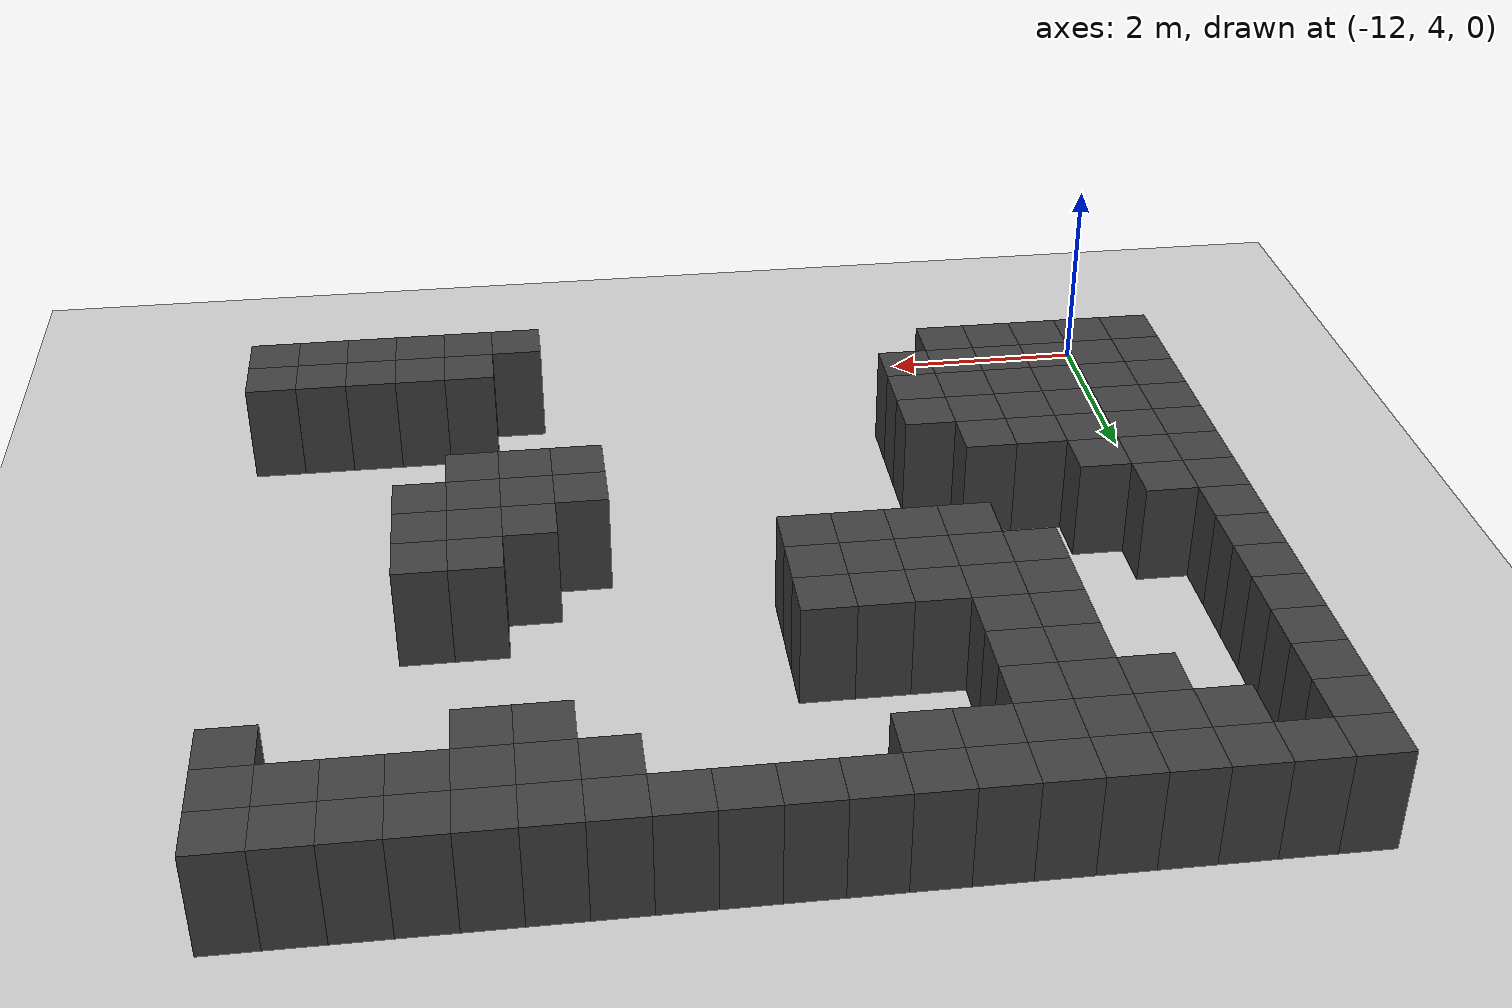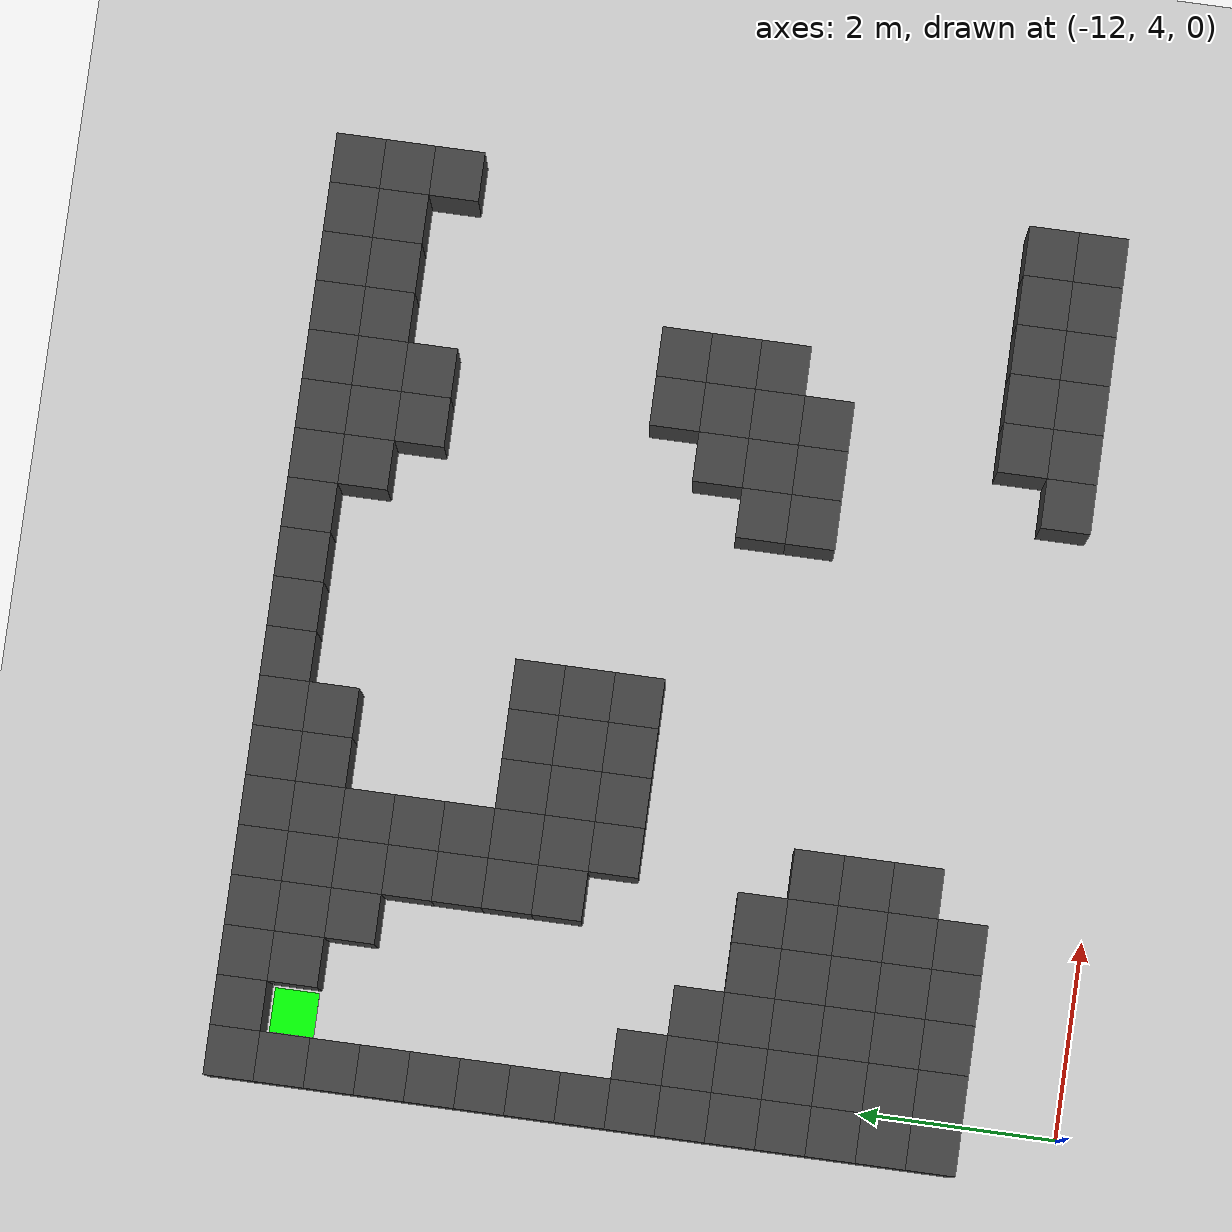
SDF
<sdf version="1.7">
 <world name="map_7372">
  <model name="ground_plane">
   <static>true</static>
   <link name="link">
    <collision name="collision">
     <geometry><plane><normal>0 0 1</normal><size>200 200</size></plane></geometry>
    </collision>
    <visual name="visual">
     <geometry><plane><normal>0 0 1</normal><size>200 200</size></plane></geometry>
     <material><ambient>0.8 0.8 0.8 1</ambient><diffuse>0.8 0.8 0.8 1</diffuse></material>
    </visual>
   </link>
  </model>
  <model name="maze_environment">
   <static>true</static>
   <link name="wall_0">
    <pose>-12.250 12.250 0.500 0 0 0</pose>
    <collision name="col"><geometry><box><size>0.5 0.5 1.0</size></box></geometry></collision>
    <visual name="vis">
     <geometry><box><size>0.5 0.5 1.0</size></box></geometry>
     <material><ambient>0.15 0.15 0.15 1</ambient><diffuse>0.25 0.25 0.25 1</diffuse></material>
    </visual>
   </link>
   <link name="wall_1">
    <pose>-11.750 12.250 0.500 0 0 0</pose>
    <collision name="col"><geometry><box><size>0.5 0.5 1.0</size></box></geometry></collision>
    <visual name="vis">
     <geometry><box><size>0.5 0.5 1.0</size></box></geometry>
     <material><ambient>0.15 0.15 0.15 1</ambient><diffuse>0.25 0.25 0.25 1</diffuse></material>
    </visual>
   </link>
   <link name="wall_2">
    <pose>-11.250 12.250 0.500 0 0 0</pose>
    <collision name="col"><geometry><box><size>0.5 0.5 1.0</size></box></geometry></collision>
    <visual name="vis">
     <geometry><box><size>0.5 0.5 1.0</size></box></geometry>
     <material><ambient>0.15 0.15 0.15 1</ambient><diffuse>0.25 0.25 0.25 1</diffuse></material>
    </visual>
   </link>
   <link name="wall_3">
    <pose>-10.750 12.250 0.500 0 0 0</pose>
    <collision name="col"><geometry><box><size>0.5 0.5 1.0</size></box></geometry></collision>
    <visual name="vis">
     <geometry><box><size>0.5 0.5 1.0</size></box></geometry>
     <material><ambient>0.15 0.15 0.15 1</ambient><diffuse>0.25 0.25 0.25 1</diffuse></material>
    </visual>
   </link>
   <link name="wall_4">
    <pose>-10.250 12.250 0.500 0 0 0</pose>
    <collision name="col"><geometry><box><size>0.5 0.5 1.0</size></box></geometry></collision>
    <visual name="vis">
     <geometry><box><size>0.5 0.5 1.0</size></box></geometry>
     <material><ambient>0.15 0.15 0.15 1</ambient><diffuse>0.25 0.25 0.25 1</diffuse></material>
    </visual>
   </link>
   <link name="wall_5">
    <pose>-9.750 12.250 0.500 0 0 0</pose>
    <collision name="col"><geometry><box><size>0.5 0.5 1.0</size></box></geometry></collision>
    <visual name="vis">
     <geometry><box><size>0.5 0.5 1.0</size></box></geometry>
     <material><ambient>0.15 0.15 0.15 1</ambient><diffuse>0.25 0.25 0.25 1</diffuse></material>
    </visual>
   </link>
   <link name="wall_6">
    <pose>-9.250 12.250 0.500 0 0 0</pose>
    <collision name="col"><geometry><box><size>0.5 0.5 1.0</size></box></geometry></collision>
    <visual name="vis">
     <geometry><box><size>0.5 0.5 1.0</size></box></geometry>
     <material><ambient>0.15 0.15 0.15 1</ambient><diffuse>0.25 0.25 0.25 1</diffuse></material>
    </visual>
   </link>
   <link name="wall_7">
    <pose>-8.750 12.250 0.500 0 0 0</pose>
    <collision name="col"><geometry><box><size>0.5 0.5 1.0</size></box></geometry></collision>
    <visual name="vis">
     <geometry><box><size>0.5 0.5 1.0</size></box></geometry>
     <material><ambient>0.15 0.15 0.15 1</ambient><diffuse>0.25 0.25 0.25 1</diffuse></material>
    </visual>
   </link>
   <link name="wall_8">
    <pose>-8.250 12.250 0.500 0 0 0</pose>
    <collision name="col"><geometry><box><size>0.5 0.5 1.0</size></box></geometry></collision>
    <visual name="vis">
     <geometry><box><size>0.5 0.5 1.0</size></box></geometry>
     <material><ambient>0.15 0.15 0.15 1</ambient><diffuse>0.25 0.25 0.25 1</diffuse></material>
    </visual>
   </link>
   <link name="wall_9">
    <pose>-7.750 12.250 0.500 0 0 0</pose>
    <collision name="col"><geometry><box><size>0.5 0.5 1.0</size></box></geometry></collision>
    <visual name="vis">
     <geometry><box><size>0.5 0.5 1.0</size></box></geometry>
     <material><ambient>0.15 0.15 0.15 1</ambient><diffuse>0.25 0.25 0.25 1</diffuse></material>
    </visual>
   </link>
   <link name="wall_10">
    <pose>-7.250 12.250 0.500 0 0 0</pose>
    <collision name="col"><geometry><box><size>0.5 0.5 1.0</size></box></geometry></collision>
    <visual name="vis">
     <geometry><box><size>0.5 0.5 1.0</size></box></geometry>
     <material><ambient>0.15 0.15 0.15 1</ambient><diffuse>0.25 0.25 0.25 1</diffuse></material>
    </visual>
   </link>
   <link name="wall_11">
    <pose>-6.750 12.250 0.500 0 0 0</pose>
    <collision name="col"><geometry><box><size>0.5 0.5 1.0</size></box></geometry></collision>
    <visual name="vis">
     <geometry><box><size>0.5 0.5 1.0</size></box></geometry>
     <material><ambient>0.15 0.15 0.15 1</ambient><diffuse>0.25 0.25 0.25 1</diffuse></material>
    </visual>
   </link>
   <link name="wall_12">
    <pose>-6.250 12.250 0.500 0 0 0</pose>
    <collision name="col"><geometry><box><size>0.5 0.5 1.0</size></box></geometry></collision>
    <visual name="vis">
     <geometry><box><size>0.5 0.5 1.0</size></box></geometry>
     <material><ambient>0.15 0.15 0.15 1</ambient><diffuse>0.25 0.25 0.25 1</diffuse></material>
    </visual>
   </link>
   <link name="wall_13">
    <pose>-5.750 12.250 0.500 0 0 0</pose>
    <collision name="col"><geometry><box><size>0.5 0.5 1.0</size></box></geometry></collision>
    <visual name="vis">
     <geometry><box><size>0.5 0.5 1.0</size></box></geometry>
     <material><ambient>0.15 0.15 0.15 1</ambient><diffuse>0.25 0.25 0.25 1</diffuse></material>
    </visual>
   </link>
   <link name="wall_14">
    <pose>-5.250 12.250 0.500 0 0 0</pose>
    <collision name="col"><geometry><box><size>0.5 0.5 1.0</size></box></geometry></collision>
    <visual name="vis">
     <geometry><box><size>0.5 0.5 1.0</size></box></geometry>
     <material><ambient>0.15 0.15 0.15 1</ambient><diffuse>0.25 0.25 0.25 1</diffuse></material>
    </visual>
   </link>
   <link name="wall_15">
    <pose>-4.750 12.250 0.500 0 0 0</pose>
    <collision name="col"><geometry><box><size>0.5 0.5 1.0</size></box></geometry></collision>
    <visual name="vis">
     <geometry><box><size>0.5 0.5 1.0</size></box></geometry>
     <material><ambient>0.15 0.15 0.15 1</ambient><diffuse>0.25 0.25 0.25 1</diffuse></material>
    </visual>
   </link>
   <link name="wall_16">
    <pose>-4.250 12.250 0.500 0 0 0</pose>
    <collision name="col"><geometry><box><size>0.5 0.5 1.0</size></box></geometry></collision>
    <visual name="vis">
     <geometry><box><size>0.5 0.5 1.0</size></box></geometry>
     <material><ambient>0.15 0.15 0.15 1</ambient><diffuse>0.25 0.25 0.25 1</diffuse></material>
    </visual>
   </link>
   <link name="wall_17">
    <pose>-3.750 12.250 0.500 0 0 0</pose>
    <collision name="col"><geometry><box><size>0.5 0.5 1.0</size></box></geometry></collision>
    <visual name="vis">
     <geometry><box><size>0.5 0.5 1.0</size></box></geometry>
     <material><ambient>0.15 0.15 0.15 1</ambient><diffuse>0.25 0.25 0.25 1</diffuse></material>
    </visual>
   </link>
   <link name="wall_18">
    <pose>-3.250 12.250 0.500 0 0 0</pose>
    <collision name="col"><geometry><box><size>0.5 0.5 1.0</size></box></geometry></collision>
    <visual name="vis">
     <geometry><box><size>0.5 0.5 1.0</size></box></geometry>
     <material><ambient>0.15 0.15 0.15 1</ambient><diffuse>0.25 0.25 0.25 1</diffuse></material>
    </visual>
   </link>
   <link name="wall_50">
    <pose>-12.250 11.750 0.500 0 0 0</pose>
    <collision name="col"><geometry><box><size>0.5 0.5 1.0</size></box></geometry></collision>
    <visual name="vis">
     <geometry><box><size>0.5 0.5 1.0</size></box></geometry>
     <material><ambient>0.15 0.15 0.15 1</ambient><diffuse>0.25 0.25 0.25 1</diffuse></material>
    </visual>
   </link>
   <link name="wall_51">
    <pose>-11.250 11.750 0.500 0 0 0</pose>
    <collision name="col"><geometry><box><size>0.5 0.5 1.0</size></box></geometry></collision>
    <visual name="vis">
     <geometry><box><size>0.5 0.5 1.0</size></box></geometry>
     <material><ambient>0.15 0.15 0.15 1</ambient><diffuse>0.25 0.25 0.25 1</diffuse></material>
    </visual>
   </link>
   <link name="wall_52">
    <pose>-10.750 11.750 0.500 0 0 0</pose>
    <collision name="col"><geometry><box><size>0.5 0.5 1.0</size></box></geometry></collision>
    <visual name="vis">
     <geometry><box><size>0.5 0.5 1.0</size></box></geometry>
     <material><ambient>0.15 0.15 0.15 1</ambient><diffuse>0.25 0.25 0.25 1</diffuse></material>
    </visual>
   </link>
   <link name="wall_53">
    <pose>-10.250 11.750 0.500 0 0 0</pose>
    <collision name="col"><geometry><box><size>0.5 0.5 1.0</size></box></geometry></collision>
    <visual name="vis">
     <geometry><box><size>0.5 0.5 1.0</size></box></geometry>
     <material><ambient>0.15 0.15 0.15 1</ambient><diffuse>0.25 0.25 0.25 1</diffuse></material>
    </visual>
   </link>
   <link name="wall_54">
    <pose>-9.750 11.750 0.500 0 0 0</pose>
    <collision name="col"><geometry><box><size>0.5 0.5 1.0</size></box></geometry></collision>
    <visual name="vis">
     <geometry><box><size>0.5 0.5 1.0</size></box></geometry>
     <material><ambient>0.15 0.15 0.15 1</ambient><diffuse>0.25 0.25 0.25 1</diffuse></material>
    </visual>
   </link>
   <link name="wall_55">
    <pose>-9.250 11.750 0.500 0 0 0</pose>
    <collision name="col"><geometry><box><size>0.5 0.5 1.0</size></box></geometry></collision>
    <visual name="vis">
     <geometry><box><size>0.5 0.5 1.0</size></box></geometry>
     <material><ambient>0.15 0.15 0.15 1</ambient><diffuse>0.25 0.25 0.25 1</diffuse></material>
    </visual>
   </link>
   <link name="wall_56">
    <pose>-8.750 11.750 0.500 0 0 0</pose>
    <collision name="col"><geometry><box><size>0.5 0.5 1.0</size></box></geometry></collision>
    <visual name="vis">
     <geometry><box><size>0.5 0.5 1.0</size></box></geometry>
     <material><ambient>0.15 0.15 0.15 1</ambient><diffuse>0.25 0.25 0.25 1</diffuse></material>
    </visual>
   </link>
   <link name="wall_57">
    <pose>-6.250 11.750 0.500 0 0 0</pose>
    <collision name="col"><geometry><box><size>0.5 0.5 1.0</size></box></geometry></collision>
    <visual name="vis">
     <geometry><box><size>0.5 0.5 1.0</size></box></geometry>
     <material><ambient>0.15 0.15 0.15 1</ambient><diffuse>0.25 0.25 0.25 1</diffuse></material>
    </visual>
   </link>
   <link name="wall_58">
    <pose>-5.750 11.750 0.500 0 0 0</pose>
    <collision name="col"><geometry><box><size>0.5 0.5 1.0</size></box></geometry></collision>
    <visual name="vis">
     <geometry><box><size>0.5 0.5 1.0</size></box></geometry>
     <material><ambient>0.15 0.15 0.15 1</ambient><diffuse>0.25 0.25 0.25 1</diffuse></material>
    </visual>
   </link>
   <link name="wall_59">
    <pose>-5.250 11.750 0.500 0 0 0</pose>
    <collision name="col"><geometry><box><size>0.5 0.5 1.0</size></box></geometry></collision>
    <visual name="vis">
     <geometry><box><size>0.5 0.5 1.0</size></box></geometry>
     <material><ambient>0.15 0.15 0.15 1</ambient><diffuse>0.25 0.25 0.25 1</diffuse></material>
    </visual>
   </link>
   <link name="wall_60">
    <pose>-4.750 11.750 0.500 0 0 0</pose>
    <collision name="col"><geometry><box><size>0.5 0.5 1.0</size></box></geometry></collision>
    <visual name="vis">
     <geometry><box><size>0.5 0.5 1.0</size></box></geometry>
     <material><ambient>0.15 0.15 0.15 1</ambient><diffuse>0.25 0.25 0.25 1</diffuse></material>
    </visual>
   </link>
   <link name="wall_61">
    <pose>-4.250 11.750 0.500 0 0 0</pose>
    <collision name="col"><geometry><box><size>0.5 0.5 1.0</size></box></geometry></collision>
    <visual name="vis">
     <geometry><box><size>0.5 0.5 1.0</size></box></geometry>
     <material><ambient>0.15 0.15 0.15 1</ambient><diffuse>0.25 0.25 0.25 1</diffuse></material>
    </visual>
   </link>
   <link name="wall_62">
    <pose>-3.750 11.750 0.500 0 0 0</pose>
    <collision name="col"><geometry><box><size>0.5 0.5 1.0</size></box></geometry></collision>
    <visual name="vis">
     <geometry><box><size>0.5 0.5 1.0</size></box></geometry>
     <material><ambient>0.15 0.15 0.15 1</ambient><diffuse>0.25 0.25 0.25 1</diffuse></material>
    </visual>
   </link>
   <link name="wall_63">
    <pose>-3.250 11.750 0.500 0 0 0</pose>
    <collision name="col"><geometry><box><size>0.5 0.5 1.0</size></box></geometry></collision>
    <visual name="vis">
     <geometry><box><size>0.5 0.5 1.0</size></box></geometry>
     <material><ambient>0.15 0.15 0.15 1</ambient><diffuse>0.25 0.25 0.25 1</diffuse></material>
    </visual>
   </link>
   <link name="wall_81">
    <pose>-12.250 11.250 0.500 0 0 0</pose>
    <collision name="col"><geometry><box><size>0.5 0.5 1.0</size></box></geometry></collision>
    <visual name="vis">
     <geometry><box><size>0.5 0.5 1.0</size></box></geometry>
     <material><ambient>0.15 0.15 0.15 1</ambient><diffuse>0.25 0.25 0.25 1</diffuse></material>
    </visual>
   </link>
   <link name="wall_82">
    <pose>-10.750 11.250 0.500 0 0 0</pose>
    <collision name="col"><geometry><box><size>0.5 0.5 1.0</size></box></geometry></collision>
    <visual name="vis">
     <geometry><box><size>0.5 0.5 1.0</size></box></geometry>
     <material><ambient>0.15 0.15 0.15 1</ambient><diffuse>0.25 0.25 0.25 1</diffuse></material>
    </visual>
   </link>
   <link name="wall_83">
    <pose>-10.250 11.250 0.500 0 0 0</pose>
    <collision name="col"><geometry><box><size>0.5 0.5 1.0</size></box></geometry></collision>
    <visual name="vis">
     <geometry><box><size>0.5 0.5 1.0</size></box></geometry>
     <material><ambient>0.15 0.15 0.15 1</ambient><diffuse>0.25 0.25 0.25 1</diffuse></material>
    </visual>
   </link>
   <link name="wall_84">
    <pose>-9.750 11.250 0.500 0 0 0</pose>
    <collision name="col"><geometry><box><size>0.5 0.5 1.0</size></box></geometry></collision>
    <visual name="vis">
     <geometry><box><size>0.5 0.5 1.0</size></box></geometry>
     <material><ambient>0.15 0.15 0.15 1</ambient><diffuse>0.25 0.25 0.25 1</diffuse></material>
    </visual>
   </link>
   <link name="wall_85">
    <pose>-5.750 11.250 0.500 0 0 0</pose>
    <collision name="col"><geometry><box><size>0.5 0.5 1.0</size></box></geometry></collision>
    <visual name="vis">
     <geometry><box><size>0.5 0.5 1.0</size></box></geometry>
     <material><ambient>0.15 0.15 0.15 1</ambient><diffuse>0.25 0.25 0.25 1</diffuse></material>
    </visual>
   </link>
   <link name="wall_86">
    <pose>-5.250 11.250 0.500 0 0 0</pose>
    <collision name="col"><geometry><box><size>0.5 0.5 1.0</size></box></geometry></collision>
    <visual name="vis">
     <geometry><box><size>0.5 0.5 1.0</size></box></geometry>
     <material><ambient>0.15 0.15 0.15 1</ambient><diffuse>0.25 0.25 0.25 1</diffuse></material>
    </visual>
   </link>
   <link name="wall_87">
    <pose>-3.250 11.250 0.500 0 0 0</pose>
    <collision name="col"><geometry><box><size>0.5 0.5 1.0</size></box></geometry></collision>
    <visual name="vis">
     <geometry><box><size>0.5 0.5 1.0</size></box></geometry>
     <material><ambient>0.15 0.15 0.15 1</ambient><diffuse>0.25 0.25 0.25 1</diffuse></material>
    </visual>
   </link>
   <link name="wall_101">
    <pose>-12.250 10.750 0.500 0 0 0</pose>
    <collision name="col"><geometry><box><size>0.5 0.5 1.0</size></box></geometry></collision>
    <visual name="vis">
     <geometry><box><size>0.5 0.5 1.0</size></box></geometry>
     <material><ambient>0.15 0.15 0.15 1</ambient><diffuse>0.25 0.25 0.25 1</diffuse></material>
    </visual>
   </link>
   <link name="wall_102">
    <pose>-10.250 10.750 0.500 0 0 0</pose>
    <collision name="col"><geometry><box><size>0.5 0.5 1.0</size></box></geometry></collision>
    <visual name="vis">
     <geometry><box><size>0.5 0.5 1.0</size></box></geometry>
     <material><ambient>0.15 0.15 0.15 1</ambient><diffuse>0.25 0.25 0.25 1</diffuse></material>
    </visual>
   </link>
   <link name="wall_103">
    <pose>-9.750 10.750 0.500 0 0 0</pose>
    <collision name="col"><geometry><box><size>0.5 0.5 1.0</size></box></geometry></collision>
    <visual name="vis">
     <geometry><box><size>0.5 0.5 1.0</size></box></geometry>
     <material><ambient>0.15 0.15 0.15 1</ambient><diffuse>0.25 0.25 0.25 1</diffuse></material>
    </visual>
   </link>
   <link name="wall_113">
    <pose>-12.250 10.250 0.500 0 0 0</pose>
    <collision name="col"><geometry><box><size>0.5 0.5 1.0</size></box></geometry></collision>
    <visual name="vis">
     <geometry><box><size>0.5 0.5 1.0</size></box></geometry>
     <material><ambient>0.15 0.15 0.15 1</ambient><diffuse>0.25 0.25 0.25 1</diffuse></material>
    </visual>
   </link>
   <link name="wall_114">
    <pose>-10.250 10.250 0.500 0 0 0</pose>
    <collision name="col"><geometry><box><size>0.5 0.5 1.0</size></box></geometry></collision>
    <visual name="vis">
     <geometry><box><size>0.5 0.5 1.0</size></box></geometry>
     <material><ambient>0.15 0.15 0.15 1</ambient><diffuse>0.25 0.25 0.25 1</diffuse></material>
    </visual>
   </link>
   <link name="wall_115">
    <pose>-9.750 10.250 0.500 0 0 0</pose>
    <collision name="col"><geometry><box><size>0.5 0.5 1.0</size></box></geometry></collision>
    <visual name="vis">
     <geometry><box><size>0.5 0.5 1.0</size></box></geometry>
     <material><ambient>0.15 0.15 0.15 1</ambient><diffuse>0.25 0.25 0.25 1</diffuse></material>
    </visual>
   </link>
   <link name="wall_123">
    <pose>-12.250 9.750 0.500 0 0 0</pose>
    <collision name="col"><geometry><box><size>0.5 0.5 1.0</size></box></geometry></collision>
    <visual name="vis">
     <geometry><box><size>0.5 0.5 1.0</size></box></geometry>
     <material><ambient>0.15 0.15 0.15 1</ambient><diffuse>0.25 0.25 0.25 1</diffuse></material>
    </visual>
   </link>
   <link name="wall_124">
    <pose>-10.250 9.750 0.500 0 0 0</pose>
    <collision name="col"><geometry><box><size>0.5 0.5 1.0</size></box></geometry></collision>
    <visual name="vis">
     <geometry><box><size>0.5 0.5 1.0</size></box></geometry>
     <material><ambient>0.15 0.15 0.15 1</ambient><diffuse>0.25 0.25 0.25 1</diffuse></material>
    </visual>
   </link>
   <link name="wall_125">
    <pose>-9.750 9.750 0.500 0 0 0</pose>
    <collision name="col"><geometry><box><size>0.5 0.5 1.0</size></box></geometry></collision>
    <visual name="vis">
     <geometry><box><size>0.5 0.5 1.0</size></box></geometry>
     <material><ambient>0.15 0.15 0.15 1</ambient><diffuse>0.25 0.25 0.25 1</diffuse></material>
    </visual>
   </link>
   <link name="wall_126">
    <pose>-9.250 9.750 0.500 0 0 0</pose>
    <collision name="col"><geometry><box><size>0.5 0.5 1.0</size></box></geometry></collision>
    <visual name="vis">
     <geometry><box><size>0.5 0.5 1.0</size></box></geometry>
     <material><ambient>0.15 0.15 0.15 1</ambient><diffuse>0.25 0.25 0.25 1</diffuse></material>
    </visual>
   </link>
   <link name="wall_127">
    <pose>-8.750 9.750 0.500 0 0 0</pose>
    <collision name="col"><geometry><box><size>0.5 0.5 1.0</size></box></geometry></collision>
    <visual name="vis">
     <geometry><box><size>0.5 0.5 1.0</size></box></geometry>
     <material><ambient>0.15 0.15 0.15 1</ambient><diffuse>0.25 0.25 0.25 1</diffuse></material>
    </visual>
   </link>
   <link name="wall_128">
    <pose>-8.250 9.750 0.500 0 0 0</pose>
    <collision name="col"><geometry><box><size>0.5 0.5 1.0</size></box></geometry></collision>
    <visual name="vis">
     <geometry><box><size>0.5 0.5 1.0</size></box></geometry>
     <material><ambient>0.15 0.15 0.15 1</ambient><diffuse>0.25 0.25 0.25 1</diffuse></material>
    </visual>
   </link>
   <link name="wall_137">
    <pose>-12.250 9.250 0.500 0 0 0</pose>
    <collision name="col"><geometry><box><size>0.5 0.5 1.0</size></box></geometry></collision>
    <visual name="vis">
     <geometry><box><size>0.5 0.5 1.0</size></box></geometry>
     <material><ambient>0.15 0.15 0.15 1</ambient><diffuse>0.25 0.25 0.25 1</diffuse></material>
    </visual>
   </link>
   <link name="wall_138">
    <pose>-10.250 9.250 0.500 0 0 0</pose>
    <collision name="col"><geometry><box><size>0.5 0.5 1.0</size></box></geometry></collision>
    <visual name="vis">
     <geometry><box><size>0.5 0.5 1.0</size></box></geometry>
     <material><ambient>0.15 0.15 0.15 1</ambient><diffuse>0.25 0.25 0.25 1</diffuse></material>
    </visual>
   </link>
   <link name="wall_139">
    <pose>-9.750 9.250 0.500 0 0 0</pose>
    <collision name="col"><geometry><box><size>0.5 0.5 1.0</size></box></geometry></collision>
    <visual name="vis">
     <geometry><box><size>0.5 0.5 1.0</size></box></geometry>
     <material><ambient>0.15 0.15 0.15 1</ambient><diffuse>0.25 0.25 0.25 1</diffuse></material>
    </visual>
   </link>
   <link name="wall_140">
    <pose>-9.250 9.250 0.500 0 0 0</pose>
    <collision name="col"><geometry><box><size>0.5 0.5 1.0</size></box></geometry></collision>
    <visual name="vis">
     <geometry><box><size>0.5 0.5 1.0</size></box></geometry>
     <material><ambient>0.15 0.15 0.15 1</ambient><diffuse>0.25 0.25 0.25 1</diffuse></material>
    </visual>
   </link>
   <link name="wall_141">
    <pose>-8.750 9.250 0.500 0 0 0</pose>
    <collision name="col"><geometry><box><size>0.5 0.5 1.0</size></box></geometry></collision>
    <visual name="vis">
     <geometry><box><size>0.5 0.5 1.0</size></box></geometry>
     <material><ambient>0.15 0.15 0.15 1</ambient><diffuse>0.25 0.25 0.25 1</diffuse></material>
    </visual>
   </link>
   <link name="wall_142">
    <pose>-8.250 9.250 0.500 0 0 0</pose>
    <collision name="col"><geometry><box><size>0.5 0.5 1.0</size></box></geometry></collision>
    <visual name="vis">
     <geometry><box><size>0.5 0.5 1.0</size></box></geometry>
     <material><ambient>0.15 0.15 0.15 1</ambient><diffuse>0.25 0.25 0.25 1</diffuse></material>
    </visual>
   </link>
   <link name="wall_150">
    <pose>-12.250 8.750 0.500 0 0 0</pose>
    <collision name="col"><geometry><box><size>0.5 0.5 1.0</size></box></geometry></collision>
    <visual name="vis">
     <geometry><box><size>0.5 0.5 1.0</size></box></geometry>
     <material><ambient>0.15 0.15 0.15 1</ambient><diffuse>0.25 0.25 0.25 1</diffuse></material>
    </visual>
   </link>
   <link name="wall_151">
    <pose>-9.750 8.750 0.500 0 0 0</pose>
    <collision name="col"><geometry><box><size>0.5 0.5 1.0</size></box></geometry></collision>
    <visual name="vis">
     <geometry><box><size>0.5 0.5 1.0</size></box></geometry>
     <material><ambient>0.15 0.15 0.15 1</ambient><diffuse>0.25 0.25 0.25 1</diffuse></material>
    </visual>
   </link>
   <link name="wall_152">
    <pose>-9.250 8.750 0.500 0 0 0</pose>
    <collision name="col"><geometry><box><size>0.5 0.5 1.0</size></box></geometry></collision>
    <visual name="vis">
     <geometry><box><size>0.5 0.5 1.0</size></box></geometry>
     <material><ambient>0.15 0.15 0.15 1</ambient><diffuse>0.25 0.25 0.25 1</diffuse></material>
    </visual>
   </link>
   <link name="wall_153">
    <pose>-8.750 8.750 0.500 0 0 0</pose>
    <collision name="col"><geometry><box><size>0.5 0.5 1.0</size></box></geometry></collision>
    <visual name="vis">
     <geometry><box><size>0.5 0.5 1.0</size></box></geometry>
     <material><ambient>0.15 0.15 0.15 1</ambient><diffuse>0.25 0.25 0.25 1</diffuse></material>
    </visual>
   </link>
   <link name="wall_154">
    <pose>-8.250 8.750 0.500 0 0 0</pose>
    <collision name="col"><geometry><box><size>0.5 0.5 1.0</size></box></geometry></collision>
    <visual name="vis">
     <geometry><box><size>0.5 0.5 1.0</size></box></geometry>
     <material><ambient>0.15 0.15 0.15 1</ambient><diffuse>0.25 0.25 0.25 1</diffuse></material>
    </visual>
   </link>
   <link name="wall_155">
    <pose>-5.250 8.750 0.500 0 0 0</pose>
    <collision name="col"><geometry><box><size>0.5 0.5 1.0</size></box></geometry></collision>
    <visual name="vis">
     <geometry><box><size>0.5 0.5 1.0</size></box></geometry>
     <material><ambient>0.15 0.15 0.15 1</ambient><diffuse>0.25 0.25 0.25 1</diffuse></material>
    </visual>
   </link>
   <link name="wall_156">
    <pose>-4.750 8.750 0.500 0 0 0</pose>
    <collision name="col"><geometry><box><size>0.5 0.5 1.0</size></box></geometry></collision>
    <visual name="vis">
     <geometry><box><size>0.5 0.5 1.0</size></box></geometry>
     <material><ambient>0.15 0.15 0.15 1</ambient><diffuse>0.25 0.25 0.25 1</diffuse></material>
    </visual>
   </link>
   <link name="wall_162">
    <pose>-12.250 8.250 0.500 0 0 0</pose>
    <collision name="col"><geometry><box><size>0.5 0.5 1.0</size></box></geometry></collision>
    <visual name="vis">
     <geometry><box><size>0.5 0.5 1.0</size></box></geometry>
     <material><ambient>0.15 0.15 0.15 1</ambient><diffuse>0.25 0.25 0.25 1</diffuse></material>
    </visual>
   </link>
   <link name="wall_163">
    <pose>-11.750 8.250 0.500 0 0 0</pose>
    <collision name="col"><geometry><box><size>0.5 0.5 1.0</size></box></geometry></collision>
    <visual name="vis">
     <geometry><box><size>0.5 0.5 1.0</size></box></geometry>
     <material><ambient>0.15 0.15 0.15 1</ambient><diffuse>0.25 0.25 0.25 1</diffuse></material>
    </visual>
   </link>
   <link name="wall_164">
    <pose>-5.750 8.250 0.500 0 0 0</pose>
    <collision name="col"><geometry><box><size>0.5 0.5 1.0</size></box></geometry></collision>
    <visual name="vis">
     <geometry><box><size>0.5 0.5 1.0</size></box></geometry>
     <material><ambient>0.15 0.15 0.15 1</ambient><diffuse>0.25 0.25 0.25 1</diffuse></material>
    </visual>
   </link>
   <link name="wall_165">
    <pose>-5.250 8.250 0.500 0 0 0</pose>
    <collision name="col"><geometry><box><size>0.5 0.5 1.0</size></box></geometry></collision>
    <visual name="vis">
     <geometry><box><size>0.5 0.5 1.0</size></box></geometry>
     <material><ambient>0.15 0.15 0.15 1</ambient><diffuse>0.25 0.25 0.25 1</diffuse></material>
    </visual>
   </link>
   <link name="wall_166">
    <pose>-4.750 8.250 0.500 0 0 0</pose>
    <collision name="col"><geometry><box><size>0.5 0.5 1.0</size></box></geometry></collision>
    <visual name="vis">
     <geometry><box><size>0.5 0.5 1.0</size></box></geometry>
     <material><ambient>0.15 0.15 0.15 1</ambient><diffuse>0.25 0.25 0.25 1</diffuse></material>
    </visual>
   </link>
   <link name="wall_172">
    <pose>-12.250 7.750 0.500 0 0 0</pose>
    <collision name="col"><geometry><box><size>0.5 0.5 1.0</size></box></geometry></collision>
    <visual name="vis">
     <geometry><box><size>0.5 0.5 1.0</size></box></geometry>
     <material><ambient>0.15 0.15 0.15 1</ambient><diffuse>0.25 0.25 0.25 1</diffuse></material>
    </visual>
   </link>
   <link name="wall_173">
    <pose>-11.750 7.750 0.500 0 0 0</pose>
    <collision name="col"><geometry><box><size>0.5 0.5 1.0</size></box></geometry></collision>
    <visual name="vis">
     <geometry><box><size>0.5 0.5 1.0</size></box></geometry>
     <material><ambient>0.15 0.15 0.15 1</ambient><diffuse>0.25 0.25 0.25 1</diffuse></material>
    </visual>
   </link>
   <link name="wall_174">
    <pose>-11.250 7.750 0.500 0 0 0</pose>
    <collision name="col"><geometry><box><size>0.5 0.5 1.0</size></box></geometry></collision>
    <visual name="vis">
     <geometry><box><size>0.5 0.5 1.0</size></box></geometry>
     <material><ambient>0.15 0.15 0.15 1</ambient><diffuse>0.25 0.25 0.25 1</diffuse></material>
    </visual>
   </link>
   <link name="wall_175">
    <pose>-6.250 7.750 0.500 0 0 0</pose>
    <collision name="col"><geometry><box><size>0.5 0.5 1.0</size></box></geometry></collision>
    <visual name="vis">
     <geometry><box><size>0.5 0.5 1.0</size></box></geometry>
     <material><ambient>0.15 0.15 0.15 1</ambient><diffuse>0.25 0.25 0.25 1</diffuse></material>
    </visual>
   </link>
   <link name="wall_176">
    <pose>-5.750 7.750 0.500 0 0 0</pose>
    <collision name="col"><geometry><box><size>0.5 0.5 1.0</size></box></geometry></collision>
    <visual name="vis">
     <geometry><box><size>0.5 0.5 1.0</size></box></geometry>
     <material><ambient>0.15 0.15 0.15 1</ambient><diffuse>0.25 0.25 0.25 1</diffuse></material>
    </visual>
   </link>
   <link name="wall_177">
    <pose>-5.250 7.750 0.500 0 0 0</pose>
    <collision name="col"><geometry><box><size>0.5 0.5 1.0</size></box></geometry></collision>
    <visual name="vis">
     <geometry><box><size>0.5 0.5 1.0</size></box></geometry>
     <material><ambient>0.15 0.15 0.15 1</ambient><diffuse>0.25 0.25 0.25 1</diffuse></material>
    </visual>
   </link>
   <link name="wall_178">
    <pose>-4.750 7.750 0.500 0 0 0</pose>
    <collision name="col"><geometry><box><size>0.5 0.5 1.0</size></box></geometry></collision>
    <visual name="vis">
     <geometry><box><size>0.5 0.5 1.0</size></box></geometry>
     <material><ambient>0.15 0.15 0.15 1</ambient><diffuse>0.25 0.25 0.25 1</diffuse></material>
    </visual>
   </link>
   <link name="wall_183">
    <pose>-12.250 7.250 0.500 0 0 0</pose>
    <collision name="col"><geometry><box><size>0.5 0.5 1.0</size></box></geometry></collision>
    <visual name="vis">
     <geometry><box><size>0.5 0.5 1.0</size></box></geometry>
     <material><ambient>0.15 0.15 0.15 1</ambient><diffuse>0.25 0.25 0.25 1</diffuse></material>
    </visual>
   </link>
   <link name="wall_184">
    <pose>-11.750 7.250 0.500 0 0 0</pose>
    <collision name="col"><geometry><box><size>0.5 0.5 1.0</size></box></geometry></collision>
    <visual name="vis">
     <geometry><box><size>0.5 0.5 1.0</size></box></geometry>
     <material><ambient>0.15 0.15 0.15 1</ambient><diffuse>0.25 0.25 0.25 1</diffuse></material>
    </visual>
   </link>
   <link name="wall_185">
    <pose>-11.250 7.250 0.500 0 0 0</pose>
    <collision name="col"><geometry><box><size>0.5 0.5 1.0</size></box></geometry></collision>
    <visual name="vis">
     <geometry><box><size>0.5 0.5 1.0</size></box></geometry>
     <material><ambient>0.15 0.15 0.15 1</ambient><diffuse>0.25 0.25 0.25 1</diffuse></material>
    </visual>
   </link>
   <link name="wall_186">
    <pose>-10.750 7.250 0.500 0 0 0</pose>
    <collision name="col"><geometry><box><size>0.5 0.5 1.0</size></box></geometry></collision>
    <visual name="vis">
     <geometry><box><size>0.5 0.5 1.0</size></box></geometry>
     <material><ambient>0.15 0.15 0.15 1</ambient><diffuse>0.25 0.25 0.25 1</diffuse></material>
    </visual>
   </link>
   <link name="wall_187">
    <pose>-10.250 7.250 0.500 0 0 0</pose>
    <collision name="col"><geometry><box><size>0.5 0.5 1.0</size></box></geometry></collision>
    <visual name="vis">
     <geometry><box><size>0.5 0.5 1.0</size></box></geometry>
     <material><ambient>0.15 0.15 0.15 1</ambient><diffuse>0.25 0.25 0.25 1</diffuse></material>
    </visual>
   </link>
   <link name="wall_188">
    <pose>-6.250 7.250 0.500 0 0 0</pose>
    <collision name="col"><geometry><box><size>0.5 0.5 1.0</size></box></geometry></collision>
    <visual name="vis">
     <geometry><box><size>0.5 0.5 1.0</size></box></geometry>
     <material><ambient>0.15 0.15 0.15 1</ambient><diffuse>0.25 0.25 0.25 1</diffuse></material>
    </visual>
   </link>
   <link name="wall_189">
    <pose>-5.750 7.250 0.500 0 0 0</pose>
    <collision name="col"><geometry><box><size>0.5 0.5 1.0</size></box></geometry></collision>
    <visual name="vis">
     <geometry><box><size>0.5 0.5 1.0</size></box></geometry>
     <material><ambient>0.15 0.15 0.15 1</ambient><diffuse>0.25 0.25 0.25 1</diffuse></material>
    </visual>
   </link>
   <link name="wall_190">
    <pose>-5.250 7.250 0.500 0 0 0</pose>
    <collision name="col"><geometry><box><size>0.5 0.5 1.0</size></box></geometry></collision>
    <visual name="vis">
     <geometry><box><size>0.5 0.5 1.0</size></box></geometry>
     <material><ambient>0.15 0.15 0.15 1</ambient><diffuse>0.25 0.25 0.25 1</diffuse></material>
    </visual>
   </link>
   <link name="wall_194">
    <pose>-12.250 6.750 0.500 0 0 0</pose>
    <collision name="col"><geometry><box><size>0.5 0.5 1.0</size></box></geometry></collision>
    <visual name="vis">
     <geometry><box><size>0.5 0.5 1.0</size></box></geometry>
     <material><ambient>0.15 0.15 0.15 1</ambient><diffuse>0.25 0.25 0.25 1</diffuse></material>
    </visual>
   </link>
   <link name="wall_195">
    <pose>-11.750 6.750 0.500 0 0 0</pose>
    <collision name="col"><geometry><box><size>0.5 0.5 1.0</size></box></geometry></collision>
    <visual name="vis">
     <geometry><box><size>0.5 0.5 1.0</size></box></geometry>
     <material><ambient>0.15 0.15 0.15 1</ambient><diffuse>0.25 0.25 0.25 1</diffuse></material>
    </visual>
   </link>
   <link name="wall_196">
    <pose>-11.250 6.750 0.500 0 0 0</pose>
    <collision name="col"><geometry><box><size>0.5 0.5 1.0</size></box></geometry></collision>
    <visual name="vis">
     <geometry><box><size>0.5 0.5 1.0</size></box></geometry>
     <material><ambient>0.15 0.15 0.15 1</ambient><diffuse>0.25 0.25 0.25 1</diffuse></material>
    </visual>
   </link>
   <link name="wall_197">
    <pose>-10.750 6.750 0.500 0 0 0</pose>
    <collision name="col"><geometry><box><size>0.5 0.5 1.0</size></box></geometry></collision>
    <visual name="vis">
     <geometry><box><size>0.5 0.5 1.0</size></box></geometry>
     <material><ambient>0.15 0.15 0.15 1</ambient><diffuse>0.25 0.25 0.25 1</diffuse></material>
    </visual>
   </link>
   <link name="wall_198">
    <pose>-10.250 6.750 0.500 0 0 0</pose>
    <collision name="col"><geometry><box><size>0.5 0.5 1.0</size></box></geometry></collision>
    <visual name="vis">
     <geometry><box><size>0.5 0.5 1.0</size></box></geometry>
     <material><ambient>0.15 0.15 0.15 1</ambient><diffuse>0.25 0.25 0.25 1</diffuse></material>
    </visual>
   </link>
   <link name="wall_199">
    <pose>-9.750 6.750 0.500 0 0 0</pose>
    <collision name="col"><geometry><box><size>0.5 0.5 1.0</size></box></geometry></collision>
    <visual name="vis">
     <geometry><box><size>0.5 0.5 1.0</size></box></geometry>
     <material><ambient>0.15 0.15 0.15 1</ambient><diffuse>0.25 0.25 0.25 1</diffuse></material>
    </visual>
   </link>
   <link name="wall_202">
    <pose>-12.250 6.250 0.500 0 0 0</pose>
    <collision name="col"><geometry><box><size>0.5 0.5 1.0</size></box></geometry></collision>
    <visual name="vis">
     <geometry><box><size>0.5 0.5 1.0</size></box></geometry>
     <material><ambient>0.15 0.15 0.15 1</ambient><diffuse>0.25 0.25 0.25 1</diffuse></material>
    </visual>
   </link>
   <link name="wall_203">
    <pose>-11.750 6.250 0.500 0 0 0</pose>
    <collision name="col"><geometry><box><size>0.5 0.5 1.0</size></box></geometry></collision>
    <visual name="vis">
     <geometry><box><size>0.5 0.5 1.0</size></box></geometry>
     <material><ambient>0.15 0.15 0.15 1</ambient><diffuse>0.25 0.25 0.25 1</diffuse></material>
    </visual>
   </link>
   <link name="wall_204">
    <pose>-11.250 6.250 0.500 0 0 0</pose>
    <collision name="col"><geometry><box><size>0.5 0.5 1.0</size></box></geometry></collision>
    <visual name="vis">
     <geometry><box><size>0.5 0.5 1.0</size></box></geometry>
     <material><ambient>0.15 0.15 0.15 1</ambient><diffuse>0.25 0.25 0.25 1</diffuse></material>
    </visual>
   </link>
   <link name="wall_205">
    <pose>-10.750 6.250 0.500 0 0 0</pose>
    <collision name="col"><geometry><box><size>0.5 0.5 1.0</size></box></geometry></collision>
    <visual name="vis">
     <geometry><box><size>0.5 0.5 1.0</size></box></geometry>
     <material><ambient>0.15 0.15 0.15 1</ambient><diffuse>0.25 0.25 0.25 1</diffuse></material>
    </visual>
   </link>
   <link name="wall_206">
    <pose>-10.250 6.250 0.500 0 0 0</pose>
    <collision name="col"><geometry><box><size>0.5 0.5 1.0</size></box></geometry></collision>
    <visual name="vis">
     <geometry><box><size>0.5 0.5 1.0</size></box></geometry>
     <material><ambient>0.15 0.15 0.15 1</ambient><diffuse>0.25 0.25 0.25 1</diffuse></material>
    </visual>
   </link>
   <link name="wall_207">
    <pose>-9.750 6.250 0.500 0 0 0</pose>
    <collision name="col"><geometry><box><size>0.5 0.5 1.0</size></box></geometry></collision>
    <visual name="vis">
     <geometry><box><size>0.5 0.5 1.0</size></box></geometry>
     <material><ambient>0.15 0.15 0.15 1</ambient><diffuse>0.25 0.25 0.25 1</diffuse></material>
    </visual>
   </link>
   <link name="wall_213">
    <pose>-12.250 5.750 0.500 0 0 0</pose>
    <collision name="col"><geometry><box><size>0.5 0.5 1.0</size></box></geometry></collision>
    <visual name="vis">
     <geometry><box><size>0.5 0.5 1.0</size></box></geometry>
     <material><ambient>0.15 0.15 0.15 1</ambient><diffuse>0.25 0.25 0.25 1</diffuse></material>
    </visual>
   </link>
   <link name="wall_214">
    <pose>-11.750 5.750 0.500 0 0 0</pose>
    <collision name="col"><geometry><box><size>0.5 0.5 1.0</size></box></geometry></collision>
    <visual name="vis">
     <geometry><box><size>0.5 0.5 1.0</size></box></geometry>
     <material><ambient>0.15 0.15 0.15 1</ambient><diffuse>0.25 0.25 0.25 1</diffuse></material>
    </visual>
   </link>
   <link name="wall_215">
    <pose>-11.250 5.750 0.500 0 0 0</pose>
    <collision name="col"><geometry><box><size>0.5 0.5 1.0</size></box></geometry></collision>
    <visual name="vis">
     <geometry><box><size>0.5 0.5 1.0</size></box></geometry>
     <material><ambient>0.15 0.15 0.15 1</ambient><diffuse>0.25 0.25 0.25 1</diffuse></material>
    </visual>
   </link>
   <link name="wall_216">
    <pose>-10.750 5.750 0.500 0 0 0</pose>
    <collision name="col"><geometry><box><size>0.5 0.5 1.0</size></box></geometry></collision>
    <visual name="vis">
     <geometry><box><size>0.5 0.5 1.0</size></box></geometry>
     <material><ambient>0.15 0.15 0.15 1</ambient><diffuse>0.25 0.25 0.25 1</diffuse></material>
    </visual>
   </link>
   <link name="wall_217">
    <pose>-10.250 5.750 0.500 0 0 0</pose>
    <collision name="col"><geometry><box><size>0.5 0.5 1.0</size></box></geometry></collision>
    <visual name="vis">
     <geometry><box><size>0.5 0.5 1.0</size></box></geometry>
     <material><ambient>0.15 0.15 0.15 1</ambient><diffuse>0.25 0.25 0.25 1</diffuse></material>
    </visual>
   </link>
   <link name="wall_218">
    <pose>-9.750 5.750 0.500 0 0 0</pose>
    <collision name="col"><geometry><box><size>0.5 0.5 1.0</size></box></geometry></collision>
    <visual name="vis">
     <geometry><box><size>0.5 0.5 1.0</size></box></geometry>
     <material><ambient>0.15 0.15 0.15 1</ambient><diffuse>0.25 0.25 0.25 1</diffuse></material>
    </visual>
   </link>
   <link name="wall_230">
    <pose>-12.250 5.250 0.500 0 0 0</pose>
    <collision name="col"><geometry><box><size>0.5 0.5 1.0</size></box></geometry></collision>
    <visual name="vis">
     <geometry><box><size>0.5 0.5 1.0</size></box></geometry>
     <material><ambient>0.15 0.15 0.15 1</ambient><diffuse>0.25 0.25 0.25 1</diffuse></material>
    </visual>
   </link>
   <link name="wall_231">
    <pose>-11.750 5.250 0.500 0 0 0</pose>
    <collision name="col"><geometry><box><size>0.5 0.5 1.0</size></box></geometry></collision>
    <visual name="vis">
     <geometry><box><size>0.5 0.5 1.0</size></box></geometry>
     <material><ambient>0.15 0.15 0.15 1</ambient><diffuse>0.25 0.25 0.25 1</diffuse></material>
    </visual>
   </link>
   <link name="wall_232">
    <pose>-11.250 5.250 0.500 0 0 0</pose>
    <collision name="col"><geometry><box><size>0.5 0.5 1.0</size></box></geometry></collision>
    <visual name="vis">
     <geometry><box><size>0.5 0.5 1.0</size></box></geometry>
     <material><ambient>0.15 0.15 0.15 1</ambient><diffuse>0.25 0.25 0.25 1</diffuse></material>
    </visual>
   </link>
   <link name="wall_233">
    <pose>-10.750 5.250 0.500 0 0 0</pose>
    <collision name="col"><geometry><box><size>0.5 0.5 1.0</size></box></geometry></collision>
    <visual name="vis">
     <geometry><box><size>0.5 0.5 1.0</size></box></geometry>
     <material><ambient>0.15 0.15 0.15 1</ambient><diffuse>0.25 0.25 0.25 1</diffuse></material>
    </visual>
   </link>
   <link name="wall_234">
    <pose>-10.250 5.250 0.500 0 0 0</pose>
    <collision name="col"><geometry><box><size>0.5 0.5 1.0</size></box></geometry></collision>
    <visual name="vis">
     <geometry><box><size>0.5 0.5 1.0</size></box></geometry>
     <material><ambient>0.15 0.15 0.15 1</ambient><diffuse>0.25 0.25 0.25 1</diffuse></material>
    </visual>
   </link>
   <link name="wall_235">
    <pose>-5.250 5.250 0.500 0 0 0</pose>
    <collision name="col"><geometry><box><size>0.5 0.5 1.0</size></box></geometry></collision>
    <visual name="vis">
     <geometry><box><size>0.5 0.5 1.0</size></box></geometry>
     <material><ambient>0.15 0.15 0.15 1</ambient><diffuse>0.25 0.25 0.25 1</diffuse></material>
    </visual>
   </link>
   <link name="wall_236">
    <pose>-4.750 5.250 0.500 0 0 0</pose>
    <collision name="col"><geometry><box><size>0.5 0.5 1.0</size></box></geometry></collision>
    <visual name="vis">
     <geometry><box><size>0.5 0.5 1.0</size></box></geometry>
     <material><ambient>0.15 0.15 0.15 1</ambient><diffuse>0.25 0.25 0.25 1</diffuse></material>
    </visual>
   </link>
   <link name="wall_237">
    <pose>-4.250 5.250 0.500 0 0 0</pose>
    <collision name="col"><geometry><box><size>0.5 0.5 1.0</size></box></geometry></collision>
    <visual name="vis">
     <geometry><box><size>0.5 0.5 1.0</size></box></geometry>
     <material><ambient>0.15 0.15 0.15 1</ambient><diffuse>0.25 0.25 0.25 1</diffuse></material>
    </visual>
   </link>
   <link name="wall_238">
    <pose>-3.750 5.250 0.500 0 0 0</pose>
    <collision name="col"><geometry><box><size>0.5 0.5 1.0</size></box></geometry></collision>
    <visual name="vis">
     <geometry><box><size>0.5 0.5 1.0</size></box></geometry>
     <material><ambient>0.15 0.15 0.15 1</ambient><diffuse>0.25 0.25 0.25 1</diffuse></material>
    </visual>
   </link>
   <link name="wall_239">
    <pose>-3.250 5.250 0.500 0 0 0</pose>
    <collision name="col"><geometry><box><size>0.5 0.5 1.0</size></box></geometry></collision>
    <visual name="vis">
     <geometry><box><size>0.5 0.5 1.0</size></box></geometry>
     <material><ambient>0.15 0.15 0.15 1</ambient><diffuse>0.25 0.25 0.25 1</diffuse></material>
    </visual>
   </link>
   <link name="wall_254">
    <pose>-5.750 4.750 0.500 0 0 0</pose>
    <collision name="col"><geometry><box><size>0.5 0.5 1.0</size></box></geometry></collision>
    <visual name="vis">
     <geometry><box><size>0.5 0.5 1.0</size></box></geometry>
     <material><ambient>0.15 0.15 0.15 1</ambient><diffuse>0.25 0.25 0.25 1</diffuse></material>
    </visual>
   </link>
   <link name="wall_255">
    <pose>-5.250 4.750 0.500 0 0 0</pose>
    <collision name="col"><geometry><box><size>0.5 0.5 1.0</size></box></geometry></collision>
    <visual name="vis">
     <geometry><box><size>0.5 0.5 1.0</size></box></geometry>
     <material><ambient>0.15 0.15 0.15 1</ambient><diffuse>0.25 0.25 0.25 1</diffuse></material>
    </visual>
   </link>
   <link name="wall_256">
    <pose>-4.750 4.750 0.500 0 0 0</pose>
    <collision name="col"><geometry><box><size>0.5 0.5 1.0</size></box></geometry></collision>
    <visual name="vis">
     <geometry><box><size>0.5 0.5 1.0</size></box></geometry>
     <material><ambient>0.15 0.15 0.15 1</ambient><diffuse>0.25 0.25 0.25 1</diffuse></material>
    </visual>
   </link>
   <link name="wall_257">
    <pose>-4.250 4.750 0.500 0 0 0</pose>
    <collision name="col"><geometry><box><size>0.5 0.5 1.0</size></box></geometry></collision>
    <visual name="vis">
     <geometry><box><size>0.5 0.5 1.0</size></box></geometry>
     <material><ambient>0.15 0.15 0.15 1</ambient><diffuse>0.25 0.25 0.25 1</diffuse></material>
    </visual>
   </link>
   <link name="wall_258">
    <pose>-3.750 4.750 0.500 0 0 0</pose>
    <collision name="col"><geometry><box><size>0.5 0.5 1.0</size></box></geometry></collision>
    <visual name="vis">
     <geometry><box><size>0.5 0.5 1.0</size></box></geometry>
     <material><ambient>0.15 0.15 0.15 1</ambient><diffuse>0.25 0.25 0.25 1</diffuse></material>
    </visual>
   </link>
   <link name="wall_259">
    <pose>-3.250 4.750 0.500 0 0 0</pose>
    <collision name="col"><geometry><box><size>0.5 0.5 1.0</size></box></geometry></collision>
    <visual name="vis">
     <geometry><box><size>0.5 0.5 1.0</size></box></geometry>
     <material><ambient>0.15 0.15 0.15 1</ambient><diffuse>0.25 0.25 0.25 1</diffuse></material>
    </visual>
   </link>
   <link name="start_zone">
    <pose>-11.750 11.750 0.005 0 0 0</pose>
    <visual name="vis">
     <geometry><box><size>0.45 0.45 0.01</size></box></geometry>
     <material>
      <ambient>0.0 1.0 0.0 1</ambient>
      <diffuse>0.0 1.0 0.0 1</diffuse>
      <emissive>0.00 0.60 0.00 1</emissive>
     </material>
    </visual>
   </link>
  </model>
 </world>
</sdf>
